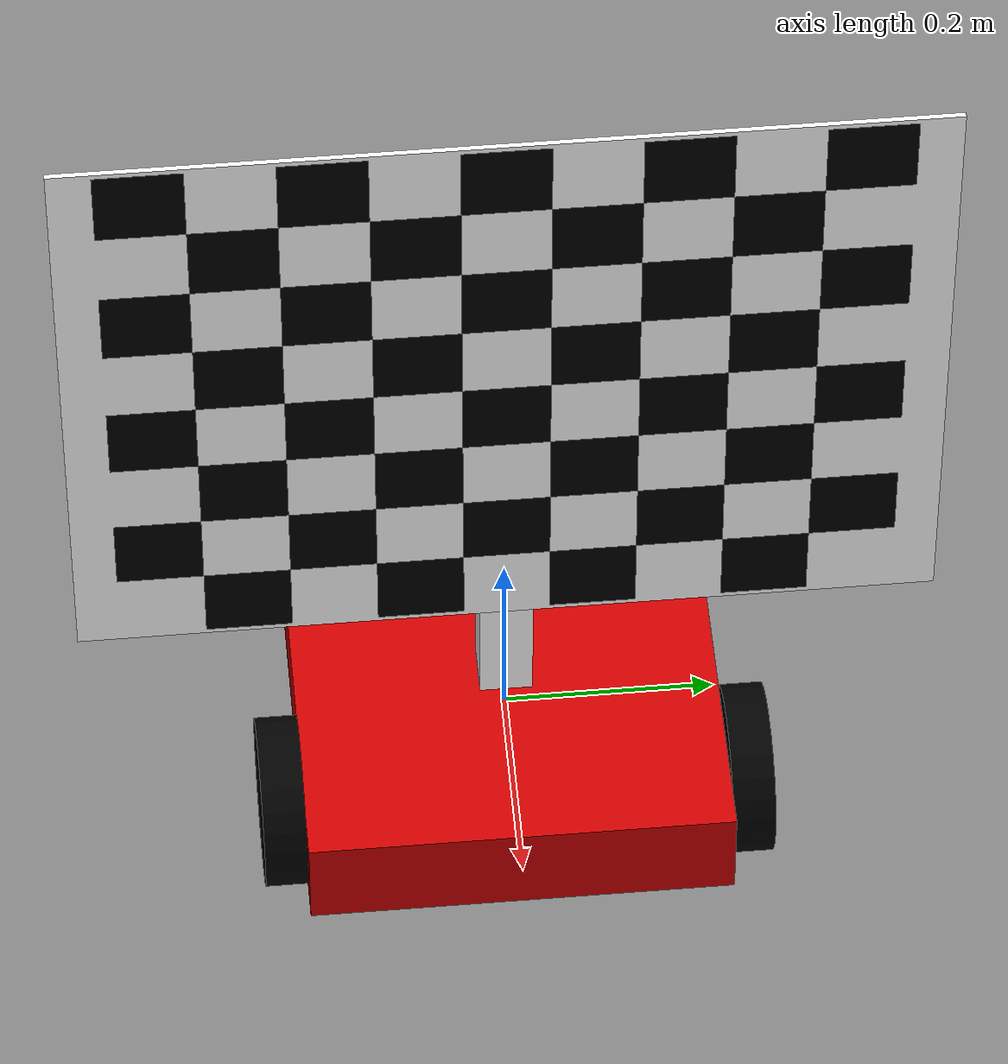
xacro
<?xml version="1.0"?>

<robot xmlns:xacro="http://www.ros.org/wiki/xacro" name="checkerboard_bot">

    <link name="checkerbot/base_link">
        <visual>
            <origin xyz="0.0 0.0 0.0" rpy="0.0 0.0 0.0"/>
            <geometry>
                <box size="0.4 0.4 0.1"/>
            </geometry>
            <material name="red">
                <color rgba="0.8 0.0 0.0 1"/>
            </material>
        </visual>
        <collision>
            <origin xyz="0.0 0.0 0.0" rpy="0.0 0.0 0.0"/>
            <geometry>
                <box size="0.4 0.4 0.1"/>
            </geometry>
        </collision>
        <inertial>
            <mass value="30.0"/>
            <inertia ixx="0.1" ixy="0" ixz="0" iyy="0.1" iyz="0" izz="0.1"/>
        </inertial>
    </link>
    <link name="checkerbot/pillar_link">
        <visual>
            <origin xyz="0.0 0.0 0.0" rpy="0.0 0.0 0.0"/>
            <geometry>
                <box size="0.05 0.05 0.5"/>
            </geometry>
            <material name="white">
                <color rgba="1.0 1.0 1.0 1"/>
            </material>
        </visual>
        <collision>
            <origin xyz="0.0 0.0 0.0" rpy="0.0 0.0 0.0"/>
            <geometry>
                <box size="0.05 0.05 0.5"/>
            </geometry>
        </collision>
        <inertial>
            <mass value="1.0"/>
            <inertia ixx="0.1" ixy="0" ixz="0" iyy="0.1" iyz="0" izz="0.1"/>
        </inertial>
    </link>
    <link name="checkerbot/rail_link">
        <visual>
            <origin xyz="0.0 0.0 0.0" rpy="0.0 0.0 0.0"/>
            <geometry>
                <box size="0.04 0.04 0.5"/>
            </geometry>
            <material name="white">
                <color rgba="0.5 0.5 0.5 1"/>
            </material>
        </visual>

        <inertial>
            <mass value="1.0"/>
            <inertia ixx="0.001" ixy="0" ixz="0" iyy="0.001" iyz="0" izz="0.001"/>
        </inertial>
    </link>
    <link name="checkerbot/wheel_left">
        <visual>
            <origin xyz="0.0 0.0 0.0" rpy="-1.5708 0.0 0.0"/>
            <geometry>
                <cylinder radius="0.08" length="0.04"/>
            </geometry>
            <material name="black">
                <color rgba="0.0 0.0 0.0 1"/>
            </material>
        </visual>
        <collision>
            <origin xyz="0.0 0.0 0.0" rpy="-1.5708 0.0 0.0"/>
            <geometry>
                <cylinder radius="0.08" length="0.04"/>
            </geometry>
        </collision>
        <inertial>
            <mass value="0.1"/>
            <inertia ixx="0.1" ixy="0" ixz="0" iyy="0.1" iyz="0" izz="0.1"/>
        </inertial>
    </link>
    <link name="checkerbot/wheel_right">
        <visual>
            <origin xyz="0.0 0.0 0.0" rpy="-1.5708 0.0 0.0"/>
            <geometry>
                <cylinder radius="0.08" length="0.04"/>
            </geometry>
            <material name="black">
                <color rgba="0.0 0.0 0.0 1"/>
            </material>
        </visual>
        <collision>
            <origin xyz="0.0 0.0 0.0" rpy="-1.5708 0.0 0.0"/>
            <geometry>
                <cylinder radius="0.08" length="0.04"/>
            </geometry>
        </collision>
        <inertial>
            <mass value="0.1"/>
            <inertia ixx="0.1" ixy="0" ixz="0" iyy="0.1" iyz="0" izz="0.1"/>
        </inertial>
    </link>
    <link name="checkerbot/caster_wheel">
        <visual>
            <origin xyz="0.0 0.0 0.0" rpy="0.0 0.0 0.0"/>
            <geometry>
                <sphere radius="0.03"/>
            </geometry>
            <material name="black">
                <color rgba="0.0 0.0 0.0 1"/>
            </material>
        </visual>
        <collision>
            <origin xyz="0.0 0.0 0.0" rpy="-1.5708 0.0 0.0"/>
            <geometry>
                <sphere radius="0.03"/>
            </geometry>
        </collision>
        <inertial>
            <mass value="0.1"/>
            <inertia ixx="0.0001" ixy="0" ixz="0" iyy="0.0001" iyz="0" izz="0.0001"/>
        </inertial>
    </link>

    <link name="checkerbot/checkerboard_link">
        <visual>
            <origin xyz="0.0 0.0 0.0" rpy="0.0 0.0 -1.5708"/>
            <geometry>
                <mesh filename="file://$(find server)/mesh/black_checker.stl" scale="0.001 0.001 0.001"/>
            </geometry>
            <material name="black">
                <color rgba="0.0 0.0 0.0 1"/>
            </material>
        </visual>
        <collision>
            <origin xyz="0.0 0.0 0.0" rpy="0.0 0.0 -1.5708"/>
            <geometry>
                <mesh filename="file://$(find server)/mesh/black_checker.stl" scale="0.001 0.001 0.001"/>
            </geometry>
        </collision>
        <visual>
            <origin xyz="0.0 0.0 0.0" rpy="0.0 0.0 -1.5708"/>
            <geometry>
                <mesh filename="file://$(find server)/mesh/white_checker.stl" scale="0.001 0.001 0.001"/>
            </geometry>
            <material name="white">
                <color rgba="1.0 1.0 1.0 1"/>
            </material>
        </visual>
        <collision>
            <origin xyz="0.0 0.0 0.0" rpy="0.0 0.0 -1.5708"/>
            <geometry>
                <mesh filename="file://$(find server)/mesh/white_checker.stl" scale="0.001 0.001 0.001"/>
            </geometry>
        </collision>
        <inertial>
            <origin xyz="0.0 0.0 0.0" rpy="0.0 0.0 -1.5708"/>
            <mass value="0.1"/>
            <inertia ixx="0.001" ixy="0" ixz="0" iyy="0.001" iyz="0" izz="0.001"/>
        </inertial>
    </link>

    <joint name="checkerbot/checkerboard_joint" type="continuous">
        <parent link="checkerbot/rail_link"/>
        <child link="checkerbot/checkerboard_link"/>

        <origin xyz="0.03 0.0 0.25" rpy="0.0 -1.5708 0.0"/>
        <axis xyz="0 0 1"/>
        <dynamics damping="0.7" friction="0.5"/>
    </joint>

    <joint name="checkerbot/pillar_joint" type="fixed">
        <parent link="checkerbot/base_link"/>
        <child link="checkerbot/pillar_link"/>
        <origin xyz="0.0 0.0 0.25" rpy="0.0 0.0 0.0"/>
    </joint>
    <joint name="checkerbot/rail_joint" type="prismatic">
        <parent link="checkerbot/pillar_link"/>
        <child link="checkerbot/rail_link"/>
        <origin xyz="0.0 0.0 0.0" rpy="0.0 0.0 0.0"/>
        <axis xyz="0 0 1"/>
        <limit lower="0" upper="0.5" effort="100" velocity="1.0"/>
    </joint>
    <joint name="checkerbot/wheel_left_joint" type="continuous">
        <parent link="checkerbot/base_link"/>
        <child link="checkerbot/wheel_left"/>
        <origin xyz="0.1 0.22 0.0" rpy="0.0 0.0 0.0"/>
        <axis xyz="0 1 0"/>
    </joint>

    <joint name="checkerbot/wheel_right_joint" type="continuous">
        <parent link="checkerbot/base_link"/>
        <child link="checkerbot/wheel_right"/>
        <origin xyz="0.1 -0.22 0.0" rpy="0.0 0.0 0.0"/>
        <axis xyz="0 1 0"/>
    </joint>

    <joint name="checkerbot/caster_joint" type="fixed">
        <parent link="checkerbot/base_link"/>
        <child link="checkerbot/caster_wheel"/>
        <origin xyz="-0.15 0.0 -0.05" rpy="0.0 0.0 0.0"/>
        <axis xyz="1 1 1"/>
    </joint>

    <gazebo>
        <plugin filename="gz-sim-diff-drive-system" name="gz::sim::systems::DiffDrive">
            <left_joint>checkerbot/wheel_left_joint</left_joint>
            <right_joint>checkerbot/wheel_right_joint</right_joint>
            <wheel_separation>0.44</wheel_separation>
            <wheel_radius>0.08</wheel_radius>

            <topic>/checkerbot/cmd_vel</topic>
            <odom_topic>/checkerbot/odom</odom_topic>

            <frame_id>checkerbot/odom</frame_id>
            <child_frame_id>checkerbot/base_link</child_frame_id>
        </plugin>

        <plugin filename="gz-sim-joint-position-controller-system" name="gz::sim::systems::JointPositionController">
            <joint_name>checkerbot/rail_joint</joint_name>
            <topic>/model/checkerboard_bot/joint/checkerbot/rail_joint/cmd_pos</topic>
            <p_gain>10000</p_gain>
            <i_gain>1</i_gain>
            <d_gain>500</d_gain>
        </plugin>

        <plugin filename="gz-sim-joint-position-controller-system" name="gz::sim::systems::JointPositionController">
            <joint_name>checkerbot/checkerboard_joint</joint_name>
            <topic>/model/checkerboard_bot/joint/checkerbot/checkerboard_joint/cmd_pos</topic>
            <p_gain>10</p_gain>
            <i_gain>0.1</i_gain>
            <d_gain>0</d_gain>
        </plugin>

        <plugin filename="gz-sim-joint-state-publisher-system" name="gz::sim::systems::JointStatePublisher">
            <topic>/checkerbot/joint_states</topic>
        </plugin>
    </gazebo>
        <gazebo reference="checkerbot/caster_wheel">
        <mu1 value="0.001"/>
        <mu2 value="0.001"/>
        <kp value="1000000.0"/>
        <kd value="10.0"/>
    </gazebo>
</robot>
